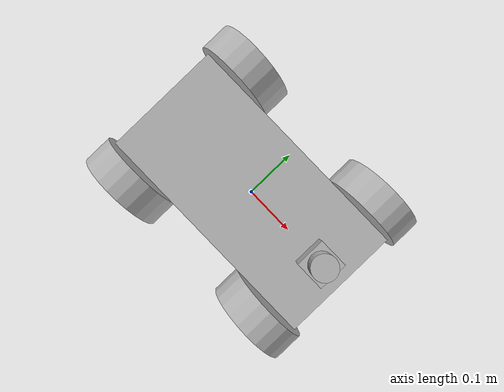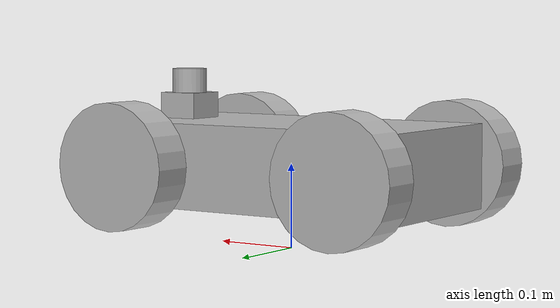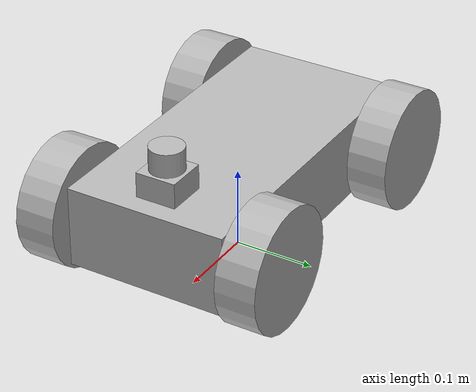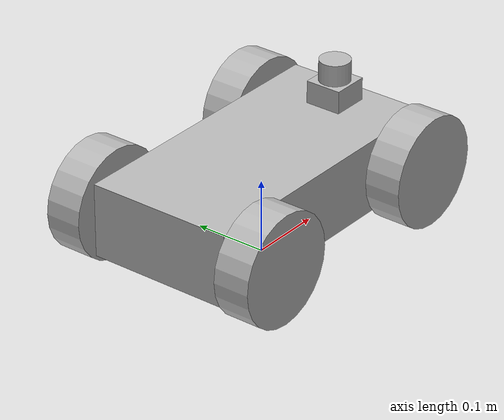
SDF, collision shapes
<!--https://automaticaddison.com/set-up-lidar-for-a-simulated-mobile-robot-in-ros-2/
-->
<?xml version='1.0'?>
<sdf version='1.4'>
  <model name="osiris_exo">
    <static>false</static>

      <pose>0.0 0.0 0.0 0.0 0.0 0.0</pose>
      <link name="base_footprint"/>

      <link name="base_link">
        <pose>0 0 0.1 0 0 0</pose>

        <inertial>
          <inertia>
            <ixx>0.566666667</ixx>
            <ixy>0.000</ixy>
            <ixz>0.000</ixz>
            <iyy>0.666666667</iyy>
            <iyz>0.000</iyz>
            <izz>0.166666667</izz>
          </inertia>
          <mass>40.0</mass>
        </inertial>

        <collision name="collision">
          <geometry>
            <box>
              <size>0.4 0.2 0.1</size>
            </box>
          </geometry>
        </collision>
        <visual name="visual">
          <geometry>
            <box>
              <size>0.4 0.2 0.1</size>
            </box>
          </geometry>
        </visual>
      </link>

      <link name="left_front_wheel">
        <pose>0.15 0.13 0.1 0 1.5707 1.5707</pose>

        <inertial>
          <inertia>
            <ixx>0.016145833</ixx>
            <ixy>0.000</ixy>
            <ixz>0.000</ixz>
            <iyy>0.016145833</iyy>
            <iyz>0.000</iyz>
            <izz>0.028125</izz>
          </inertia>
          <mass>10.0</mass>
        </inertial>

        <collision name="collision">
          <geometry>
            <cylinder>
              <radius>.075</radius>
              <length>.05</length>
            </cylinder>
          </geometry>
        </collision>
        <visual name="visual">
          <geometry>
            <cylinder>
              <radius>.075</radius>
              <length>.05</length>
            </cylinder>
          </geometry>
        </visual>
      </link>

      <link name="right_front_wheel">
        <pose>0.15 -0.13 0.1 0 1.5707 1.5707</pose>

        <inertial>
          <inertia>
            <ixx>0.016145833</ixx>
            <ixy>0.000</ixy>
            <ixz>0.000</ixz>
            <iyy>0.016145833</iyy>
            <iyz>0.000</iyz>
            <izz>0.028125</izz>
          </inertia>
          <mass>10.0</mass>
        </inertial>

        <collision name="collision">
          <geometry>
            <cylinder>
              <radius>.075</radius>
              <length>.05</length>
            </cylinder>
          </geometry>
        </collision>
        <visual name="visual">
          <geometry>
            <cylinder>
              <radius>.075</radius>
              <length>.05</length>
            </cylinder>
          </geometry>
        </visual>
      </link>

      <link name="left_rear_wheel">
        <pose>-0.15 0.13 0.1 0 1.5707 1.5707</pose>

        <inertial>
          <inertia>
            <ixx>0.016145833</ixx>
            <ixy>0.000</ixy>
            <ixz>0.000</ixz>
            <iyy>0.016145833</iyy>
            <iyz>0.000</iyz>
            <izz>0.028125</izz>
          </inertia>
          <mass>10.0</mass>
        </inertial>

        <collision name="collision">
          <geometry>
            <cylinder>
              <radius>.075</radius>
              <length>.05</length>
            </cylinder>
          </geometry>
        </collision>
        <visual name="visual">
          <geometry>
            <cylinder>
              <radius>.075</radius>
              <length>.05</length>
            </cylinder>
          </geometry>
        </visual>
      </link>

      <link name="right_rear_wheel">
        <pose>-0.15 -0.13 0.1 0 1.5707 1.5707</pose>

        <inertial>
          <inertia>
            <ixx>0.016145833</ixx>
            <ixy>0.000</ixy>
            <ixz>0.000</ixz>
            <iyy>0.016145833</iyy>
            <iyz>0.000</iyz>
            <izz>0.028125</izz>
          </inertia>
          <mass>10.0</mass>
        </inertial>

        <collision name="collision">
          <geometry>
            <cylinder>
              <radius>.075</radius>
              <length>.05</length>
            </cylinder>
          </geometry>
        </collision>
        <visual name="visual">
          <geometry>
            <cylinder>
              <radius>.075</radius>
              <length>.05</length>
            </cylinder>
          </geometry>
        </visual>
      </link>

      <link name="lidar_link">
        <inertial>
          <mass>0.1</mass>
        </inertial>
        <pose>0.15 0 0.175 0 0 0</pose>

        <visual name="visual">
          <geometry>
            <mesh>
              <uri>model://hokuyo/meshes/hokuyo.dae</uri>
            </mesh>
          </geometry>
        </visual>

        <collision name="collision-base">
          <pose>0 0 -0.0145 0 0 0</pose>
          <geometry>
            <box>
              <size>0.05 0.05 0.041</size>
            </box>
          </geometry>
        </collision>

        <collision name="collision-top">
          <pose>0 0 0.0205 0 0 0</pose>
          <geometry>
            <cylinder>
              <radius>0.021</radius>
              <length>0.029</length>
            </cylinder>
          </geometry>
        </collision>

        <sensor name="laser" type="ray">
          <pose>0.01 0 0.0175 0 -0 0</pose>

          <ray>
            <scan>
              <horizontal>
                <samples>360</samples>
                <resolution>1.00000</resolution>
                <min_angle>0.000000</min_angle>
                <max_angle>6.280000</max_angle>
              </horizontal>
            </scan>
            <range>
              <min>0.120000</min>
              <max>3.5</max>
              <resolution>0.015000</resolution>
            </range>
            <noise>
              <type>gaussian</type>
              <mean>0.0</mean>
              <stddev>0.01</stddev>
            </noise>
          </ray>
          <always_on>true</always_on>
          <update_rate>5</update_rate>
          <visualize>true</visualize>

          <plugin name='laser' filename='libgazebo_ros_ray_sensor.so'>
            <ros>
              <namespace>/osiris_exo</namespace>
              <remapping>~/out:=scan</remapping>
            </ros>
            <output_type>sensor_msgs/LaserScan</output_type>
            <frame_name>lidar_link</frame_name>
          </plugin>
        </sensor>

      </link>

      <joint name="base_link_joint" type="fixed">
        <pose>0 0 0.075 0 0 0</pose>
        <parent>base_footprint</parent>
        <child>base_link</child>
      </joint>

      <joint type="revolute" name="left_rear_wheel_joint">
        <pose>0 0 -0.03 0 0 0</pose>
        <child>left_rear_wheel</child>
        <parent>base_link</parent>
        <axis>
          <xyz>0 1 0</xyz>
        </axis>
      </joint>

      <joint type="revolute" name="right_rear_wheel_joint">
        <pose>0 0 0.03 0 0 0</pose>
        <child>right_rear_wheel</child>
        <parent>base_link</parent>
        <axis>
          <xyz>0 1 0</xyz>
        </axis>
      </joint>

      <joint type="revolute" name="left_front_wheel_joint">
        <pose>0 0 -0.03 0 0 0</pose>
        <child>left_front_wheel</child>
        <parent>base_link</parent>
        <axis>
          <xyz>0 1 0</xyz>
        </axis>
      </joint>

      <joint type="revolute" name="right_front_wheel_joint">
        <pose>0 0 0.03 0 0 0</pose>
        <child>right_front_wheel</child>
        <parent>base_link</parent>
        <axis>
          <xyz>0 1 0</xyz>
        </axis>
      </joint>

      <joint type="fixed" name="lidar_joint">
        <child>lidar_link</child>
        <parent>base_link</parent>
      </joint>

      <plugin name='diff_drive' filename='libgazebo_ros_diff_drive.so'>
         <ros>
           <namespace>/osiris_exo</namespace>
           <remapping>cmd_vel:=cmd_vel</remapping>
           <remapping>odom:=odom</remapping>
         </ros>

         <left_joint>left_rear_wheel_joint</left_joint>
         <right_joint>right_rear_wheel_joint</right_joint>

         <wheel_separation>0.26</wheel_separation>
         <wheel_diameter>0.2</wheel_diameter>

         <max_wheel_torque>20</max_wheel_torque>
         <max_wheel_acceleration>1.0</max_wheel_acceleration>

         <publish_odom>true</publish_odom>
         <publish_odom_tf>true</publish_odom_tf>
         <publish_wheel_tf>false</publish_wheel_tf>

         <odometry_frame>odom</odometry_frame>
        <robot_base_frame>base_footprint</robot_base_frame>
       </plugin>

      <plugin name="simple_robot_joint_state" filename="libgazebo_ros_joint_state_publisher.so">
        <ros>
          <remapping>~/out:=joint_states</remapping>
        </ros>
        <update_rate>30</update_rate>
        <joint_name>right_rear_wheel_joint</joint_name>
        <joint_name>left_rear_wheel_joint</joint_name>
        <joint_name>right_front_wheel_joint</joint_name>
        <joint_name>left_front_wheel_joint</joint_name>
      </plugin>

  </model>
</sdf>
